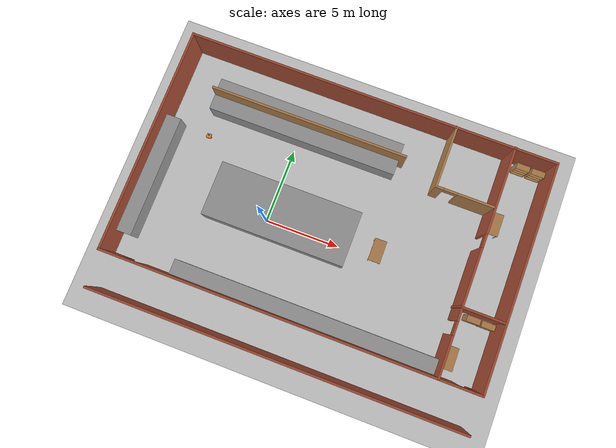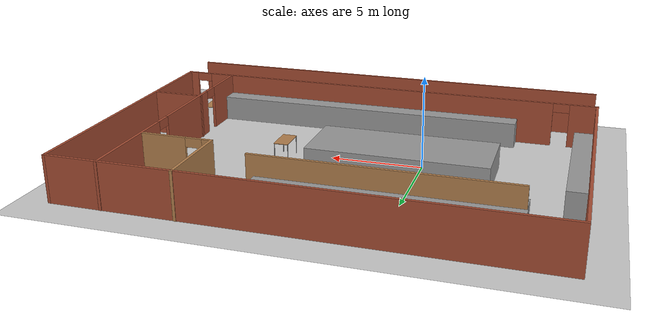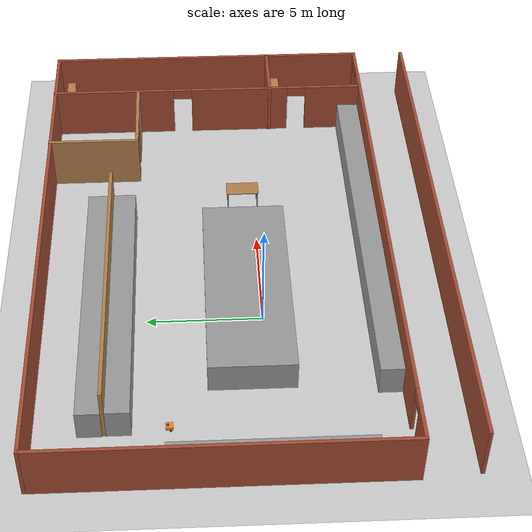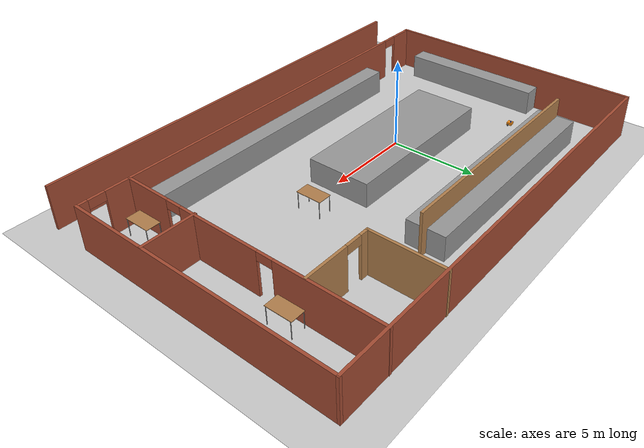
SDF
<sdf version="1.7">
 <world name="default">
  <light name="sun" type="directional">
   <pose>0 0 10 0 -0 0</pose>
   <diffuse>0.8 0.8 0.8 1</diffuse>
   <specular>0.2 0.2 0.2 1</specular>
   <attenuation>
    <range>1000</range>
    <constant>0.9</constant>
    <linear>0.01</linear>
    <quadratic>0.001</quadratic>
   </attenuation>
   <direction>-0.5 0.1 -0.9</direction>
   <spot><inner_angle>0</inner_angle><outer_angle>0</outer_angle><falloff>0</falloff></spot>
  </light>
  <model name="ground_plane">
   <static>1</static>
   <link name="link">
    <collision name="collision">
     <geometry><plane><normal>0 0 1</normal><size>100 100</size></plane></geometry>
     <surface>
      <contact><collide_bitmask>65535</collide_bitmask></contact>
      <friction><ode><mu>100</mu><mu2>50</mu2></ode></friction>
     </surface>
    </collision>
    <visual name="visual">
     <cast_shadows>0</cast_shadows>
     <geometry><plane><normal>0 0 1</normal><size>100 100</size></plane></geometry>
     <material>
      <script><uri>file://media/materials/scripts/gazebo.material</uri><name>Gazebo/Grey</name></script>
     </material>
    </visual>
   </link>
  </model>
  <gravity>0 0 -9.8</gravity>
  <magnetic_field>6e-06 2.3e-05 -4.2e-05</magnetic_field>
  <atmosphere type="adiabatic"/>
  <physics type="ode">
   <max_step_size>0.001</max_step_size>
   <real_time_factor>1</real_time_factor>
   <real_time_update_rate>1000</real_time_update_rate>
  </physics>
  <scene><ambient>0.4 0.4 0.4 1</ambient><background>0.7 0.7 0.7 1</background><shadows>1</shadows></scene>
  <audio><device>default</device></audio>
  <spherical_coordinates>
   <surface_model>EARTH_WGS84</surface_model>
   <latitude_deg>0</latitude_deg>
   <longitude_deg>0</longitude_deg>
   <elevation>0</elevation>
   <heading_deg>0</heading_deg>
  </spherical_coordinates>
  <model name="robotics_lab.world">
   <pose>3.78652 0.79051 0 0 -0 0</pose>
   <link name="Wall_1">
    <collision name="Wall_1_Collision">
     <geometry><box><size>24.75 0.15 2.5</size></box></geometry>
     <pose>0 0 1.25 0 -0 0</pose>
    </collision>
    <visual name="Wall_1_Visual">
     <pose>0 0 1.25 0 -0 0</pose>
     <geometry><box><size>24.75 0.15 2.5</size></box></geometry>
     <material>
      <script><uri>file://media/materials/scripts/gazebo.material</uri><name>Gazebo/Bricks</name></script>
      <ambient>1 1 1 1</ambient>
     </material>
     <meta><layer>0</layer></meta>
    </visual>
    <pose>0.061202 -8.77446 0 0 -0 0</pose>
   </link>
   <link name="Wall_11">
    <collision name="Wall_11_Collision">
     <geometry><box><size>3 0.15 2.5</size></box></geometry>
     <pose>0 0 1.25 0 -0 0</pose>
    </collision>
    <visual name="Wall_11_Visual">
     <pose>0 0 1.25 0 -0 0</pose>
     <geometry><box><size>3 0.15 2.5</size></box></geometry>
     <material>
      <script><uri>file://media/materials/scripts/gazebo.material</uri><name>Gazebo/Bricks</name></script>
      <ambient>1 1 1 1</ambient>
     </material>
     <meta><layer>0</layer></meta>
    </visual>
    <pose>10.9822 -1.85152 0 0 -0 0</pose>
   </link>
   <link name="Wall_13">
    <collision name="Wall_13_Collision">
     <geometry><box><size>4.25 0.15 2.5</size></box></geometry>
     <pose>0 0 1.25 0 -0 0</pose>
    </collision>
    <visual name="Wall_13_Visual">
     <pose>0 0 1.25 0 -0 0</pose>
     <geometry><box><size>4.25 0.15 2.5</size></box></geometry>
     <material>
      <script><uri>file://media/materials/scripts/gazebo.material</uri><name>Gazebo/Wood</name></script>
      <ambient>1 1 1 1</ambient>
     </material>
     <meta><layer>0</layer></meta>
    </visual>
    <pose>5.72266 6.72246 0 0 -0 -1.5708</pose>
   </link>
   <link name="Wall_14">
    <pose>7.64766 4.67246 0 0 -0 0</pose>
    <visual name="Wall_14_Visual_0">
     <pose>-1.71259 0 1.25 0 -0 0</pose>
     <geometry><box><size>0.574826 0.15 2.5</size></box></geometry>
     <material>
      <script><uri>file://media/materials/scripts/gazebo.material</uri><name>Gazebo/Wood</name></script>
      <ambient>1 1 1 1</ambient>
     </material>
     <meta><layer>0</layer></meta>
    </visual>
    <collision name="Wall_14_Collision_0">
     <geometry><box><size>0.574826 0.15 2.5</size></box></geometry>
     <pose>-1.71259 0 1.25 0 -0 0</pose>
    </collision>
    <visual name="Wall_14_Visual_1">
     <pose>0.737413 0 1.25 0 -0 0</pose>
     <geometry><box><size>2.52517 0.15 2.5</size></box></geometry>
     <material>
      <script><uri>file://media/materials/scripts/gazebo.material</uri><name>Gazebo/Wood</name></script>
      <ambient>1 1 1 1</ambient>
     </material>
     <meta><layer>0</layer></meta>
    </visual>
    <collision name="Wall_14_Collision_1">
     <geometry><box><size>2.52517 0.15 2.5</size></box></geometry>
     <pose>0.737413 0 1.25 0 -0 0</pose>
    </collision>
    <visual name="Wall_14_Visual_2">
     <pose>-0.975174 0 2.25 0 -0 0</pose>
     <geometry><box><size>0.9 0.15 0.5</size></box></geometry>
     <material>
      <script><uri>file://media/materials/scripts/gazebo.material</uri><name>Gazebo/Wood</name></script>
      <ambient>1 1 1 1</ambient>
     </material>
     <meta><layer>0</layer></meta>
    </visual>
    <collision name="Wall_14_Collision_2">
     <geometry><box><size>0.9 0.15 0.5</size></box></geometry>
     <pose>-0.975174 0 2.25 0 -0 0</pose>
    </collision>
   </link>
   <link name="Wall_16">
    <collision name="Wall_16_Collision">
     <geometry><box><size>13.25 0.15 2.5</size></box></geometry>
     <pose>0 0 1.25 0 -0 0</pose>
    </collision>
    <visual name="Wall_16_Visual">
     <pose>0 0 1.25 0 -0 0</pose>
     <geometry><box><size>13.25 0.15 2.5</size></box></geometry>
     <material>
      <script><uri>file://media/materials/scripts/gazebo.material</uri><name>Gazebo/Wood</name></script>
      <ambient>1 1 1 1</ambient>
     </material>
     <meta><layer>0</layer></meta>
    </visual>
    <pose>-3.24117 5.81745 0 0 -0 0</pose>
   </link>
   <link name="Wall_4">
    <pose>1e-06 -6.35384 0 0 -0 0</pose>
    <visual name="Wall_4_Visual_0">
     <pose>-11.7224 0 1.25 0 -0 0</pose>
     <geometry><box><size>1.55525 0.15 2.5</size></box></geometry>
     <material>
      <script><uri>file://media/materials/scripts/gazebo.material</uri><name>Gazebo/Bricks</name></script>
      <ambient>1 1 1 1</ambient>
     </material>
     <meta><layer>0</layer></meta>
    </visual>
    <collision name="Wall_4_Collision_0">
     <geometry><box><size>1.55525 0.15 2.5</size></box></geometry>
     <pose>-11.7224 0 1.25 0 -0 0</pose>
    </collision>
    <visual name="Wall_4_Visual_1">
     <pose>0.467707 0 1.25 0 -0 0</pose>
     <geometry><box><size>21.0249 0.15 2.5</size></box></geometry>
     <material>
      <script><uri>file://media/materials/scripts/gazebo.material</uri><name>Gazebo/Bricks</name></script>
      <ambient>1 1 1 1</ambient>
     </material>
     <meta><layer>0</layer></meta>
    </visual>
    <collision name="Wall_4_Collision_1">
     <geometry><box><size>21.0249 0.15 2.5</size></box></geometry>
     <pose>0.467707 0 1.25 0 -0 0</pose>
    </collision>
    <visual name="Wall_4_Visual_2">
     <pose>12.1901 0 1.25 0 -0 0</pose>
     <geometry><box><size>0.61984 0.15 2.5</size></box></geometry>
     <material>
      <script><uri>file://media/materials/scripts/gazebo.material</uri><name>Gazebo/Bricks</name></script>
      <ambient>1 1 1 1</ambient>
     </material>
     <meta><layer>0</layer></meta>
    </visual>
    <collision name="Wall_4_Collision_2">
     <geometry><box><size>0.61984 0.15 2.5</size></box></geometry>
     <pose>12.1901 0 1.25 0 -0 0</pose>
    </collision>
    <visual name="Wall_4_Visual_3">
     <pose>-10.4947 0 2.25 0 -0 0</pose>
     <geometry><box><size>0.9 0.15 0.5</size></box></geometry>
     <material>
      <script><uri>file://media/materials/scripts/gazebo.material</uri><name>Gazebo/Bricks</name></script>
      <ambient>1 1 1 1</ambient>
     </material>
     <meta><layer>0</layer></meta>
    </visual>
    <collision name="Wall_4_Collision_3">
     <geometry><box><size>0.9 0.15 0.5</size></box></geometry>
     <pose>-10.4947 0 2.25 0 -0 0</pose>
    </collision>
    <visual name="Wall_4_Visual_4">
     <pose>11.4302 0 2.25 0 -0 0</pose>
     <geometry><box><size>0.9 0.15 0.5</size></box></geometry>
     <material>
      <script><uri>file://media/materials/scripts/gazebo.material</uri><name>Gazebo/Bricks</name></script>
      <ambient>1 1 1 1</ambient>
     </material>
     <meta><layer>0</layer></meta>
    </visual>
    <collision name="Wall_4_Collision_4">
     <geometry><box><size>0.9 0.15 0.5</size></box></geometry>
     <pose>11.4302 0 2.25 0 -0 0</pose>
    </collision>
   </link>
   <link name="Wall_5">
    <collision name="Wall_5_Collision">
     <geometry><box><size>15.25 0.15 2.5</size></box></geometry>
     <pose>0 0 1.25 0 -0 0</pose>
    </collision>
    <visual name="Wall_5_Visual">
     <pose>0 0 1.25 0 -0 0</pose>
     <geometry><box><size>15.25 0.15 2.5</size></box></geometry>
     <material>
      <script><uri>file://media/materials/scripts/gazebo.material</uri><name>Gazebo/Bricks</name></script>
      <ambient>1 1 1 1</ambient>
     </material>
     <meta><layer>0</layer></meta>
    </visual>
    <pose>12.425 1.19616 0 0 -0 1.5708</pose>
   </link>
   <link name="Wall_6">
    <collision name="Wall_6_Collision">
     <geometry><box><size>25 0.15 2.5</size></box></geometry>
     <pose>0 0 1.25 0 -0 0</pose>
    </collision>
    <visual name="Wall_6_Visual">
     <pose>0 0 1.25 0 -0 0</pose>
     <geometry><box><size>25 0.15 2.5</size></box></geometry>
     <material>
      <script><uri>file://media/materials/scripts/gazebo.material</uri><name>Gazebo/Bricks</name></script>
      <ambient>1 1 1 1</ambient>
     </material>
     <meta><layer>0</layer></meta>
    </visual>
    <pose>1e-06 8.74616 0 0 -0 3.14159</pose>
   </link>
   <link name="Wall_7">
    <collision name="Wall_7_Collision">
     <geometry><box><size>15.25 0.15 2.5</size></box></geometry>
     <pose>0 0 1.25 0 -0 0</pose>
    </collision>
    <visual name="Wall_7_Visual">
     <pose>0 0 1.25 0 -0 0</pose>
     <geometry><box><size>15.25 0.15 2.5</size></box></geometry>
     <material>
      <script><uri>file://media/materials/scripts/gazebo.material</uri><name>Gazebo/Bricks</name></script>
      <ambient>1 1 1 1</ambient>
     </material>
     <meta><layer>0</layer></meta>
    </visual>
    <pose>-12.425 1.19616 0 0 -0 -1.5708</pose>
   </link>
   <link name="Wall_9">
    <pose>9.61573 1.22446 0 0 -0 -1.5708</pose>
    <visual name="Wall_9_Visual_0">
     <pose>-4.663 0 1.25 0 -0 0</pose>
     <geometry><box><size>5.92399 0.15 2.5</size></box></geometry>
     <material>
      <script><uri>file://media/materials/scripts/gazebo.material</uri><name>Gazebo/Bricks</name></script>
      <ambient>1 1 1 1</ambient>
     </material>
     <meta><layer>0</layer></meta>
    </visual>
    <collision name="Wall_9_Collision_0">
     <geometry><box><size>5.92399 0.15 2.5</size></box></geometry>
     <pose>-4.663 0 1.25 0 -0 0</pose>
    </collision>
    <visual name="Wall_9_Visual_1">
     <pose>1.58089 0 1.25 0 -0 0</pose>
     <geometry><box><size>4.76378 0.15 2.5</size></box></geometry>
     <material>
      <script><uri>file://media/materials/scripts/gazebo.material</uri><name>Gazebo/Bricks</name></script>
      <ambient>1 1 1 1</ambient>
     </material>
     <meta><layer>0</layer></meta>
    </visual>
    <collision name="Wall_9_Collision_1">
     <geometry><box><size>4.76378 0.15 2.5</size></box></geometry>
     <pose>1.58089 0 1.25 0 -0 0</pose>
    </collision>
    <visual name="Wall_9_Visual_2">
     <pose>6.24389 0 1.25 0 -0 0</pose>
     <geometry><box><size>2.76222 0.15 2.5</size></box></geometry>
     <material>
      <script><uri>file://media/materials/scripts/gazebo.material</uri><name>Gazebo/Bricks</name></script>
      <ambient>1 1 1 1</ambient>
     </material>
     <meta><layer>0</layer></meta>
    </visual>
    <collision name="Wall_9_Collision_2">
     <geometry><box><size>2.76222 0.15 2.5</size></box></geometry>
     <pose>6.24389 0 1.25 0 -0 0</pose>
    </collision>
    <visual name="Wall_9_Visual_3">
     <pose>-1.25101 0 2.25 0 -0 0</pose>
     <geometry><box><size>0.9 0.15 0.5</size></box></geometry>
     <material>
      <script><uri>file://media/materials/scripts/gazebo.material</uri><name>Gazebo/Bricks</name></script>
      <ambient>1 1 1 1</ambient>
     </material>
     <meta><layer>0</layer></meta>
    </visual>
    <collision name="Wall_9_Collision_3">
     <geometry><box><size>0.9 0.15 0.5</size></box></geometry>
     <pose>-1.25101 0 2.25 0 -0 0</pose>
    </collision>
    <visual name="Wall_9_Visual_4">
     <pose>4.41277 0 2.25 0 -0 0</pose>
     <geometry><box><size>0.9 0.15 0.5</size></box></geometry>
     <material>
      <script><uri>file://media/materials/scripts/gazebo.material</uri><name>Gazebo/Bricks</name></script>
      <ambient>1 1 1 1</ambient>
     </material>
     <meta><layer>0</layer></meta>
    </visual>
    <collision name="Wall_9_Collision_4">
     <geometry><box><size>0.9 0.15 0.5</size></box></geometry>
     <pose>4.41277 0 2.25 0 -0 0</pose>
    </collision>
   </link>
   <static>1</static>
  </model>
  <model name="model_editor">
   <link name="link_0">
    <inertial>
     <mass>18.0708</mass>
     <inertia><ixx>4.46291</ixx><ixy>0</ixy><ixz>0</ixz><iyy>253.408</iyy><iyz>0</iyz><izz>251.957</izz></inertia>
    </inertial>
    <pose>-7.47746 3.85814 0.409871 0 -0 0</pose>
    <visual name="visual">
     <geometry><box><size>12.8963 1 1.40129</size></box></geometry>
     <material>
      <lighting>1</lighting>
      <script><uri>file://media/materials/scripts/gazebo.material</uri><name>Gazebo/Grey</name></script>
      <shader type="pixel"/>
     </material>
    </visual>
    <collision name="collision">
     <geometry><box><size>12.8963 1 1.40129</size></box></geometry>
     <surface>
      <friction>
       <ode><mu>1</mu><mu2>1</mu2><fdir1>0 0 0</fdir1><slip1>0</slip1><slip2>0</slip2></ode>
       <torsional>
        <coefficient>1</coefficient>
        <patch_radius>0</patch_radius>
        <surface_radius>0</surface_radius>
        <use_patch_radius>1</use_patch_radius>
        <ode><slip>0</slip></ode>
       </torsional>
      </friction>
      <bounce><restitution_coefficient>0</restitution_coefficient><threshold>1e+06</threshold></bounce>
      <contact>
       <collide_without_contact>0</collide_without_contact>
       <collide_without_contact_bitmask>1</collide_without_contact_bitmask>
       <collide_bitmask>1</collide_bitmask>
       <ode>
        <soft_cfm>0</soft_cfm>
        <soft_erp>0.2</soft_erp>
        <kp>1e+13</kp>
        <kd>1</kd>
        <max_vel>0.01</max_vel>
        <min_depth>0</min_depth>
       </ode>
       <bullet>
        <split_impulse>1</split_impulse>
        <split_impulse_penetration_threshold>-0.01</split_impulse_penetration_threshold>
        <soft_cfm>0</soft_cfm>
        <soft_erp>0.2</soft_erp>
        <kp>1e+13</kp>
        <kd>1</kd>
       </bullet>
      </contact>
     </surface>
    </collision>
   </link>
   <link name="link_0_clone">
    <inertial>
     <mass>18.0708</mass>
     <inertia><ixx>4.46291</ixx><ixy>0</ixy><ixz>0</ixz><iyy>253.408</iyy><iyz>0</iyz><izz>251.957</izz></inertia>
    </inertial>
    <pose>-7.49983 5.0254 0.40987 0 -0 0</pose>
    <visual name="visual">
     <geometry><box><size>12.8963 1 1.40129</size></box></geometry>
     <material>
      <lighting>1</lighting>
      <script><uri>file://media/materials/scripts/gazebo.material</uri><name>Gazebo/Grey</name></script>
      <shader type="pixel"/>
     </material>
    </visual>
    <collision name="collision">
     <geometry><box><size>12.8963 1 1.40129</size></box></geometry>
     <surface>
      <friction>
       <ode><mu>1</mu><mu2>1</mu2><fdir1>0 0 0</fdir1><slip1>0</slip1><slip2>0</slip2></ode>
       <torsional>
        <coefficient>1</coefficient>
        <patch_radius>0</patch_radius>
        <surface_radius>0</surface_radius>
        <use_patch_radius>1</use_patch_radius>
        <ode><slip>0</slip></ode>
       </torsional>
      </friction>
      <bounce><restitution_coefficient>0</restitution_coefficient><threshold>1e+06</threshold></bounce>
      <contact>
       <collide_without_contact>0</collide_without_contact>
       <collide_without_contact_bitmask>1</collide_without_contact_bitmask>
       <collide_bitmask>1</collide_bitmask>
       <ode>
        <soft_cfm>0</soft_cfm>
        <soft_erp>0.2</soft_erp>
        <kp>1e+13</kp>
        <kd>1</kd>
        <max_vel>0.01</max_vel>
        <min_depth>0</min_depth>
       </ode>
       <bullet>
        <split_impulse>1</split_impulse>
        <split_impulse_penetration_threshold>-0.01</split_impulse_penetration_threshold>
        <soft_cfm>0</soft_cfm>
        <soft_erp>0.2</soft_erp>
        <kp>1e+13</kp>
        <kd>1</kd>
       </bullet>
      </contact>
     </surface>
    </collision>
   </link>
   <link name="link_0_clone_0">
    <inertial>
     <mass>24.7173</mass>
     <inertia><ixx>6.10438</ixx><ixy>0</ixy><ixz>0</ixz><iyy>644.956</iyy><iyz>0</iyz><izz>642.971</izz></inertia>
    </inertial>
    <pose>-3.33593 -7.13954 0.40987 0 -0 0</pose>
    <visual name="visual">
     <geometry><box><size>17.6396 1 1.40129</size></box></geometry>
     <material>
      <lighting>1</lighting>
      <script><uri>file://media/materials/scripts/gazebo.material</uri><name>Gazebo/Grey</name></script>
      <shader type="pixel"/>
     </material>
    </visual>
    <collision name="collision">
     <geometry><box><size>17.6396 1 1.40129</size></box></geometry>
     <surface>
      <friction>
       <ode><mu>1</mu><mu2>1</mu2><fdir1>0 0 0</fdir1><slip1>0</slip1><slip2>0</slip2></ode>
       <torsional>
        <coefficient>1</coefficient>
        <patch_radius>0</patch_radius>
        <surface_radius>0</surface_radius>
        <use_patch_radius>1</use_patch_radius>
        <ode><slip>0</slip></ode>
       </torsional>
      </friction>
      <bounce><restitution_coefficient>0</restitution_coefficient><threshold>1e+06</threshold></bounce>
      <contact>
       <collide_without_contact>0</collide_without_contact>
       <collide_without_contact_bitmask>1</collide_without_contact_bitmask>
       <collide_bitmask>1</collide_bitmask>
       <ode>
        <soft_cfm>0</soft_cfm>
        <soft_erp>0.2</soft_erp>
        <kp>1e+13</kp>
        <kd>1</kd>
        <max_vel>0.01</max_vel>
        <min_depth>0</min_depth>
       </ode>
       <bullet>
        <split_impulse>1</split_impulse>
        <split_impulse_penetration_threshold>-0.01</split_impulse_penetration_threshold>
        <soft_cfm>0</soft_cfm>
        <soft_erp>0.2</soft_erp>
        <kp>1e+13</kp>
        <kd>1</kd>
       </bullet>
      </contact>
     </surface>
    </collision>
   </link>
   <link name="link_0_clone_1">
    <inertial>
     <mass>50.1155</mass>
     <inertia><ixx>65.1768</ixx><ixy>0</ixy><ixz>0</ixz><iyy>399.775</iyy><iyz>0</iyz><izz>448.55</izz></inertia>
    </inertial>
    <pose>-6.90095 -1.54559 0.40987 0 -0 0</pose>
    <visual name="visual">
     <geometry><box><size>9.68304 3.69361 1.40129</size></box></geometry>
     <material>
      <lighting>1</lighting>
      <script><uri>file://media/materials/scripts/gazebo.material</uri><name>Gazebo/Grey</name></script>
      <shader type="pixel"/>
     </material>
    </visual>
    <collision name="collision">
     <geometry><box><size>9.68304 3.69361 1.40129</size></box></geometry>
     <surface>
      <friction>
       <ode><mu>1</mu><mu2>1</mu2><fdir1>0 0 0</fdir1><slip1>0</slip1><slip2>0</slip2></ode>
       <torsional>
        <coefficient>1</coefficient>
        <patch_radius>0</patch_radius>
        <surface_radius>0</surface_radius>
        <use_patch_radius>1</use_patch_radius>
        <ode><slip>0</slip></ode>
       </torsional>
      </friction>
      <bounce><restitution_coefficient>0</restitution_coefficient><threshold>1e+06</threshold></bounce>
      <contact>
       <collide_without_contact>0</collide_without_contact>
       <collide_without_contact_bitmask>1</collide_without_contact_bitmask>
       <collide_bitmask>1</collide_bitmask>
       <ode>
        <soft_cfm>0</soft_cfm>
        <soft_erp>0.2</soft_erp>
        <kp>1e+13</kp>
        <kd>1</kd>
        <max_vel>0.01</max_vel>
        <min_depth>0</min_depth>
       </ode>
       <bullet>
        <split_impulse>1</split_impulse>
        <split_impulse_penetration_threshold>-0.01</split_impulse_penetration_threshold>
        <soft_cfm>0</soft_cfm>
        <soft_erp>0.2</soft_erp>
        <kp>1e+13</kp>
        <kd>1</kd>
       </bullet>
      </contact>
     </surface>
    </collision>
   </link>
   <link name="link_0_clone_2">
    <inertial>
     <mass>11.5629</mass>
     <inertia><ixx>2.85567</ixx><ixy>0</ixy><ixz>0</ixz><iyy>67.506</iyy><iyz>0</iyz><izz>66.5775</izz></inertia>
    </inertial>
    <pose>-15.8863 -2.1349 0.40987 0 0 -1.57051</pose>
    <visual name="visual">
     <geometry><box><size>8.25192 1 1.40129</size></box></geometry>
     <material>
      <lighting>1</lighting>
      <script><uri>file://media/materials/scripts/gazebo.material</uri><name>Gazebo/Grey</name></script>
      <shader type="pixel"/>
     </material>
    </visual>
    <collision name="collision">
     <geometry><box><size>8.25192 1 1.40129</size></box></geometry>
     <surface>
      <friction>
       <ode><mu>1</mu><mu2>1</mu2><fdir1>0 0 0</fdir1><slip1>0</slip1><slip2>0</slip2></ode>
       <torsional>
        <coefficient>1</coefficient>
        <patch_radius>0</patch_radius>
        <surface_radius>0</surface_radius>
        <use_patch_radius>1</use_patch_radius>
        <ode><slip>0</slip></ode>
       </torsional>
      </friction>
      <bounce><restitution_coefficient>0</restitution_coefficient><threshold>1e+06</threshold></bounce>
      <contact>
       <collide_without_contact>0</collide_without_contact>
       <collide_without_contact_bitmask>1</collide_without_contact_bitmask>
       <collide_bitmask>1</collide_bitmask>
       <ode>
        <soft_cfm>0</soft_cfm>
        <soft_erp>0.2</soft_erp>
        <kp>1e+13</kp>
        <kd>1</kd>
        <max_vel>0.01</max_vel>
        <min_depth>0</min_depth>
       </ode>
       <bullet>
        <split_impulse>1</split_impulse>
        <split_impulse_penetration_threshold>-0.01</split_impulse_penetration_threshold>
        <soft_cfm>0</soft_cfm>
        <soft_erp>0.2</soft_erp>
        <kp>1e+13</kp>
        <kd>1</kd>
       </bullet>
      </contact>
     </surface>
    </collision>
   </link>
   <model name="bookshelf">
    <static>1</static>
    <link name="link">
     <inertial><mass>1</mass></inertial>
     <collision name="back">
      <pose>0 0.005 0.6 0 -0 0</pose>
      <geometry><box><size>0.9 0.01 1.2</size></box></geometry>
     </collision>
     <visual name="visual1">
      <pose>0 0.005 0.6 0 -0 0</pose>
      <geometry><box><size>0.9 0.01 1.2</size></box></geometry>
      <material>
       <script><uri>file://media/materials/scripts/gazebo.material</uri><name>Gazebo/Wood</name></script>
      </material>
     </visual>
     <collision name="left_side">
      <pose>0.45 -0.195 0.6 0 -0 0</pose>
      <geometry><box><size>0.02 0.4 1.2</size></box></geometry>
     </collision>
     <visual name="visual2">
      <pose>0.45 -0.195 0.6 0 -0 0</pose>
      <geometry><box><size>0.02 0.4 1.2</size></box></geometry>
      <material>
       <script><uri>file://media/materials/scripts/gazebo.material</uri><name>Gazebo/Wood</name></script>
      </material>
     </visual>
     <collision name="right_side">
      <pose>-0.45 -0.195 0.6 0 -0 0</pose>
      <geometry><box><size>0.02 0.4 1.2</size></box></geometry>
     </collision>
     <visual name="visual3">
      <pose>-0.45 -0.195 0.6 0 -0 0</pose>
      <geometry><box><size>0.02 0.4 1.2</size></box></geometry>
      <material>
       <script><uri>file://media/materials/scripts/gazebo.material</uri><name>Gazebo/Wood</name></script>
      </material>
     </visual>
     <collision name="bottom">
      <pose>0 -0.195 0.03 0 -0 0</pose>
      <geometry><box><size>0.88 0.4 0.06</size></box></geometry>
     </collision>
     <visual name="visual4">
      <pose>0 -0.195 0.03 0 -0 0</pose>
      <geometry><box><size>0.88 0.4 0.06</size></box></geometry>
      <material>
       <script><uri>file://media/materials/scripts/gazebo.material</uri><name>Gazebo/Wood</name></script>
      </material>
     </visual>
     <collision name="top">
      <pose>0 -0.195 1.19 0 -0 0</pose>
      <geometry><box><size>0.88 0.4 0.02</size></box></geometry>
     </collision>
     <visual name="visual5">
      <pose>0 -0.195 1.19 0 -0 0</pose>
      <geometry><box><size>0.88 0.4 0.02</size></box></geometry>
      <material>
       <script><uri>file://media/materials/scripts/gazebo.material</uri><name>Gazebo/Wood</name></script>
      </material>
     </visual>
     <collision name="low_shelf">
      <pose>0 -0.195 0.43 0 -0 0</pose>
      <geometry><box><size>0.88 0.4 0.02</size></box></geometry>
     </collision>
     <visual name="visual6">
      <pose>0 -0.195 0.43 0 -0 0</pose>
      <geometry><box><size>0.88 0.4 0.02</size></box></geometry>
      <material>
       <script><uri>file://media/materials/scripts/gazebo.material</uri><name>Gazebo/Wood</name></script>
      </material>
     </visual>
     <collision name="high_shelf">
      <pose>0 -0.195 0.8 0 -0 0</pose>
      <geometry><box><size>0.88 0.4 0.02</size></box></geometry>
     </collision>
     <visual name="visual7">
      <pose>0 -0.195 0.8 0 -0 0</pose>
      <geometry><box><size>0.88 0.4 0.02</size></box></geometry>
      <material>
       <script><uri>file://media/materials/scripts/gazebo.material</uri><name>Gazebo/Wood</name></script>
      </material>
     </visual>
    </link>
    <pose>6.78918 -3.41722 -0.292765 0 -0 0</pose>
   </model>
   <model name="bookshelf_clone">
    <static>1</static>
    <link name="link">
     <inertial><mass>1</mass></inertial>
     <collision name="back">
      <pose>0 0.005 0.6 0 -0 0</pose>
      <geometry><box><size>0.9 0.01 1.2</size></box></geometry>
     </collision>
     <visual name="visual1">
      <pose>0 0.005 0.6 0 -0 0</pose>
      <geometry><box><size>0.9 0.01 1.2</size></box></geometry>
      <material>
       <script><uri>file://media/materials/scripts/gazebo.material</uri><name>Gazebo/Wood</name></script>
      </material>
     </visual>
     <collision name="left_side">
      <pose>0.45 -0.195 0.6 0 -0 0</pose>
      <geometry><box><size>0.02 0.4 1.2</size></box></geometry>
     </collision>
     <visual name="visual2">
      <pose>0.45 -0.195 0.6 0 -0 0</pose>
      <geometry><box><size>0.02 0.4 1.2</size></box></geometry>
      <material>
       <script><uri>file://media/materials/scripts/gazebo.material</uri><name>Gazebo/Wood</name></script>
      </material>
     </visual>
     <collision name="right_side">
      <pose>-0.45 -0.195 0.6 0 -0 0</pose>
      <geometry><box><size>0.02 0.4 1.2</size></box></geometry>
     </collision>
     <visual name="visual3">
      <pose>-0.45 -0.195 0.6 0 -0 0</pose>
      <geometry><box><size>0.02 0.4 1.2</size></box></geometry>
      <material>
       <script><uri>file://media/materials/scripts/gazebo.material</uri><name>Gazebo/Wood</name></script>
      </material>
     </visual>
     <collision name="bottom">
      <pose>0 -0.195 0.03 0 -0 0</pose>
      <geometry><box><size>0.88 0.4 0.06</size></box></geometry>
     </collision>
     <visual name="visual4">
      <pose>0 -0.195 0.03 0 -0 0</pose>
      <geometry><box><size>0.88 0.4 0.06</size></box></geometry>
      <material>
       <script><uri>file://media/materials/scripts/gazebo.material</uri><name>Gazebo/Wood</name></script>
      </material>
     </visual>
     <collision name="top">
      <pose>0 -0.195 1.19 0 -0 0</pose>
      <geometry><box><size>0.88 0.4 0.02</size></box></geometry>
     </collision>
     <visual name="visual5">
      <pose>0 -0.195 1.19 0 -0 0</pose>
      <geometry><box><size>0.88 0.4 0.02</size></box></geometry>
      <material>
       <script><uri>file://media/materials/scripts/gazebo.material</uri><name>Gazebo/Wood</name></script>
      </material>
     </visual>
     <collision name="low_shelf">
      <pose>0 -0.195 0.43 0 -0 0</pose>
      <geometry><box><size>0.88 0.4 0.02</size></box></geometry>
     </collision>
     <visual name="visual6">
      <pose>0 -0.195 0.43 0 -0 0</pose>
      <geometry><box><size>0.88 0.4 0.02</size></box></geometry>
      <material>
       <script><uri>file://media/materials/scripts/gazebo.material</uri><name>Gazebo/Wood</name></script>
      </material>
     </visual>
     <collision name="high_shelf">
      <pose>0 -0.195 0.8 0 -0 0</pose>
      <geometry><box><size>0.88 0.4 0.02</size></box></geometry>
     </collision>
     <visual name="visual7">
      <pose>0 -0.195 0.8 0 -0 0</pose>
      <geometry><box><size>0.88 0.4 0.02</size></box></geometry>
      <material>
       <script><uri>file://media/materials/scripts/gazebo.material</uri><name>Gazebo/Wood</name></script>
      </material>
     </visual>
    </link>
    <pose>6.74104 7.03907 -0.292765 0 -0 0</pose>
   </model>
   <model name="bookshelf_clone_0">
    <static>1</static>
    <link name="link">
     <inertial><mass>1</mass></inertial>
     <collision name="back">
      <pose>0 0.005 0.6 0 -0 0</pose>
      <geometry><box><size>0.9 0.01 1.2</size></box></geometry>
     </collision>
     <visual name="visual1">
      <pose>0 0.005 0.6 0 -0 0</pose>
      <geometry><box><size>0.9 0.01 1.2</size></box></geometry>
      <material>
       <script><uri>file://media/materials/scripts/gazebo.material</uri><name>Gazebo/Wood</name></script>
      </material>
     </visual>
     <collision name="left_side">
      <pose>0.45 -0.195 0.6 0 -0 0</pose>
      <geometry><box><size>0.02 0.4 1.2</size></box></geometry>
     </collision>
     <visual name="visual2">
      <pose>0.45 -0.195 0.6 0 -0 0</pose>
      <geometry><box><size>0.02 0.4 1.2</size></box></geometry>
      <material>
       <script><uri>file://media/materials/scripts/gazebo.material</uri><name>Gazebo/Wood</name></script>
      </material>
     </visual>
     <collision name="right_side">
      <pose>-0.45 -0.195 0.6 0 -0 0</pose>
      <geometry><box><size>0.02 0.4 1.2</size></box></geometry>
     </collision>
     <visual name="visual3">
      <pose>-0.45 -0.195 0.6 0 -0 0</pose>
      <geometry><box><size>0.02 0.4 1.2</size></box></geometry>
      <material>
       <script><uri>file://media/materials/scripts/gazebo.material</uri><name>Gazebo/Wood</name></script>
      </material>
     </visual>
     <collision name="bottom">
      <pose>0 -0.195 0.03 0 -0 0</pose>
      <geometry><box><size>0.88 0.4 0.06</size></box></geometry>
     </collision>
     <visual name="visual4">
      <pose>0 -0.195 0.03 0 -0 0</pose>
      <geometry><box><size>0.88 0.4 0.06</size></box></geometry>
      <material>
       <script><uri>file://media/materials/scripts/gazebo.material</uri><name>Gazebo/Wood</name></script>
      </material>
     </visual>
     <collision name="top">
      <pose>0 -0.195 1.19 0 -0 0</pose>
      <geometry><box><size>0.88 0.4 0.02</size></box></geometry>
     </collision>
     <visual name="visual5">
      <pose>0 -0.195 1.19 0 -0 0</pose>
      <geometry><box><size>0.88 0.4 0.02</size></box></geometry>
      <material>
       <script><uri>file://media/materials/scripts/gazebo.material</uri><name>Gazebo/Wood</name></script>
      </material>
     </visual>
     <collision name="low_shelf">
      <pose>0 -0.195 0.43 0 -0 0</pose>
      <geometry><box><size>0.88 0.4 0.02</size></box></geometry>
     </collision>
     <visual name="visual6">
      <pose>0 -0.195 0.43 0 -0 0</pose>
      <geometry><box><size>0.88 0.4 0.02</size></box></geometry>
      <material>
       <script><uri>file://media/materials/scripts/gazebo.material</uri><name>Gazebo/Wood</name></script>
      </material>
     </visual>
     <collision name="high_shelf">
      <pose>0 -0.195 0.8 0 -0 0</pose>
      <geometry><box><size>0.88 0.4 0.02</size></box></geometry>
     </collision>
     <visual name="visual7">
      <pose>0 -0.195 0.8 0 -0 0</pose>
      <geometry><box><size>0.88 0.4 0.02</size></box></geometry>
      <material>
       <script><uri>file://media/materials/scripts/gazebo.material</uri><name>Gazebo/Wood</name></script>
      </material>
     </visual>
    </link>
    <pose>7.75648 -3.43464 -0.292765 0 -0 0</pose>
   </model>
   <model name="bookshelf_clone_1">
    <static>1</static>
    <link name="link">
     <inertial><mass>1</mass></inertial>
     <collision name="back">
      <pose>0 0.005 0.6 0 -0 0</pose>
      <geometry><box><size>0.9 0.01 1.2</size></box></geometry>
     </collision>
     <visual name="visual1">
      <pose>0 0.005 0.6 0 -0 0</pose>
      <geometry><box><size>0.9 0.01 1.2</size></box></geometry>
      <material>
       <script><uri>file://media/materials/scripts/gazebo.material</uri><name>Gazebo/Wood</name></script>
      </material>
     </visual>
     <collision name="left_side">
      <pose>0.45 -0.195 0.6 0 -0 0</pose>
      <geometry><box><size>0.02 0.4 1.2</size></box></geometry>
     </collision>
     <visual name="visual2">
      <pose>0.45 -0.195 0.6 0 -0 0</pose>
      <geometry><box><size>0.02 0.4 1.2</size></box></geometry>
      <material>
       <script><uri>file://media/materials/scripts/gazebo.material</uri><name>Gazebo/Wood</name></script>
      </material>
     </visual>
     <collision name="right_side">
      <pose>-0.45 -0.195 0.6 0 -0 0</pose>
      <geometry><box><size>0.02 0.4 1.2</size></box></geometry>
     </collision>
     <visual name="visual3">
      <pose>-0.45 -0.195 0.6 0 -0 0</pose>
      <geometry><box><size>0.02 0.4 1.2</size></box></geometry>
      <material>
       <script><uri>file://media/materials/scripts/gazebo.material</uri><name>Gazebo/Wood</name></script>
      </material>
     </visual>
     <collision name="bottom">
      <pose>0 -0.195 0.03 0 -0 0</pose>
      <geometry><box><size>0.88 0.4 0.06</size></box></geometry>
     </collision>
     <visual name="visual4">
      <pose>0 -0.195 0.03 0 -0 0</pose>
      <geometry><box><size>0.88 0.4 0.06</size></box></geometry>
      <material>
       <script><uri>file://media/materials/scripts/gazebo.material</uri><name>Gazebo/Wood</name></script>
      </material>
     </visual>
     <collision name="top">
      <pose>0 -0.195 1.19 0 -0 0</pose>
      <geometry><box><size>0.88 0.4 0.02</size></box></geometry>
     </collision>
     <visual name="visual5">
      <pose>0 -0.195 1.19 0 -0 0</pose>
      <geometry><box><size>0.88 0.4 0.02</size></box></geometry>
      <material>
       <script><uri>file://media/materials/scripts/gazebo.material</uri><name>Gazebo/Wood</name></script>
      </material>
     </visual>
     <collision name="low_shelf">
      <pose>0 -0.195 0.43 0 -0 0</pose>
      <geometry><box><size>0.88 0.4 0.02</size></box></geometry>
     </collision>
     <visual name="visual6">
      <pose>0 -0.195 0.43 0 -0 0</pose>
      <geometry><box><size>0.88 0.4 0.02</size></box></geometry>
      <material>
       <script><uri>file://media/materials/scripts/gazebo.material</uri><name>Gazebo/Wood</name></script>
      </material>
     </visual>
     <collision name="high_shelf">
      <pose>0 -0.195 0.8 0 -0 0</pose>
      <geometry><box><size>0.88 0.4 0.02</size></box></geometry>
     </collision>
     <visual name="visual7">
      <pose>0 -0.195 0.8 0 -0 0</pose>
      <geometry><box><size>0.88 0.4 0.02</size></box></geometry>
      <material>
       <script><uri>file://media/materials/scripts/gazebo.material</uri><name>Gazebo/Wood</name></script>
      </material>
     </visual>
    </link>
    <pose>7.7779 7.01971 -0.292765 0 -0 0</pose>
   </model>
   <model name="table">
    <static>1</static>
    <link name="link">
     <collision name="surface">
      <pose>0 0 1 0 -0 0</pose>
      <geometry><box><size>1.5 0.8 0.03</size></box></geometry>
      <surface><friction><ode><mu>0.6</mu><mu2>0.6</mu2></ode></friction></surface>
     </collision>
     <visual name="visual1">
      <pose>0 0 1 0 -0 0</pose>
      <geometry><box><size>1.5 0.8 0.03</size></box></geometry>
      <material>
       <script><uri>file://media/materials/scripts/gazebo.material</uri><name>Gazebo/Wood</name></script>
      </material>
     </visual>
     <collision name="front_left_leg">
      <pose>0.68 0.38 0.5 0 -0 0</pose>
      <geometry><cylinder><radius>0.02</radius><length>1</length></cylinder></geometry>
     </collision>
     <visual name="front_left_leg">
      <pose>0.68 0.38 0.5 0 -0 0</pose>
      <geometry><cylinder><radius>0.02</radius><length>1</length></cylinder></geometry>
      <material>
       <script><uri>file://media/materials/scripts/gazebo.material</uri><name>Gazebo/Grey</name></script>
      </material>
     </visual>
     <collision name="front_right_leg">
      <pose>0.68 -0.38 0.5 0 -0 0</pose>
      <geometry><cylinder><radius>0.02</radius><length>1</length></cylinder></geometry>
     </collision>
     <visual name="front_right_leg">
      <pose>0.68 -0.38 0.5 0 -0 0</pose>
      <geometry><cylinder><radius>0.02</radius><length>1</length></cylinder></geometry>
      <material>
       <script><uri>file://media/materials/scripts/gazebo.material</uri><name>Gazebo/Grey</name></script>
      </material>
     </visual>
     <collision name="back_right_leg">
      <pose>-0.68 -0.38 0.5 0 -0 0</pose>
      <geometry><cylinder><radius>0.02</radius><length>1</length></cylinder></geometry>
     </collision>
     <visual name="back_right_leg">
      <pose>-0.68 -0.38 0.5 0 -0 0</pose>
      <geometry><cylinder><radius>0.02</radius><length>1</length></cylinder></geometry>
      <material>
       <script><uri>file://media/materials/scripts/gazebo.material</uri><name>Gazebo/Grey</name></script>
      </material>
     </visual>
     <collision name="back_left_leg">
      <pose>-0.68 0.38 0.5 0 -0 0</pose>
      <geometry><cylinder><radius>0.02</radius><length>1</length></cylinder></geometry>
     </collision>
     <visual name="back_left_leg">
      <pose>-0.68 0.38 0.5 0 -0 0</pose>
      <geometry><cylinder><radius>0.02</radius><length>1</length></cylinder></geometry>
      <material>
       <script><uri>file://media/materials/scripts/gazebo.material</uri><name>Gazebo/Grey</name></script>
      </material>
     </visual>
    </link>
    <pose>-0.313936 -1.6083 -0.292765 0 0 -1.56029</pose>
   </model>
   <model name="table_clone">
    <static>1</static>
    <link name="link">
     <collision name="surface">
      <pose>0 0 1 0 -0 0</pose>
      <geometry><box><size>1.5 0.8 0.03</size></box></geometry>
      <surface><friction><ode><mu>0.6</mu><mu2>0.6</mu2></ode></friction></surface>
     </collision>
     <visual name="visual1">
      <pose>0 0 1 0 -0 0</pose>
      <geometry><box><size>1.5 0.8 0.03</size></box></geometry>
      <material>
       <script><uri>file://media/materials/scripts/gazebo.material</uri><name>Gazebo/Wood</name></script>
      </material>
     </visual>
     <collision name="front_left_leg">
      <pose>0.68 0.38 0.5 0 -0 0</pose>
      <geometry><cylinder><radius>0.02</radius><length>1</length></cylinder></geometry>
     </collision>
     <visual name="front_left_leg">
      <pose>0.68 0.38 0.5 0 -0 0</pose>
      <geometry><cylinder><radius>0.02</radius><length>1</length></cylinder></geometry>
      <material>
       <script><uri>file://media/materials/scripts/gazebo.material</uri><name>Gazebo/Grey</name></script>
      </material>
     </visual>
     <collision name="front_right_leg">
      <pose>0.68 -0.38 0.5 0 -0 0</pose>
      <geometry><cylinder><radius>0.02</radius><length>1</length></cylinder></geometry>
     </collision>
     <visual name="front_right_leg">
      <pose>0.68 -0.38 0.5 0 -0 0</pose>
      <geometry><cylinder><radius>0.02</radius><length>1</length></cylinder></geometry>
      <material>
       <script><uri>file://media/materials/scripts/gazebo.material</uri><name>Gazebo/Grey</name></script>
      </material>
     </visual>
     <collision name="back_right_leg">
      <pose>-0.68 -0.38 0.5 0 -0 0</pose>
      <geometry><cylinder><radius>0.02</radius><length>1</length></cylinder></geometry>
     </collision>
     <visual name="back_right_leg">
      <pose>-0.68 -0.38 0.5 0 -0 0</pose>
      <geometry><cylinder><radius>0.02</radius><length>1</length></cylinder></geometry>
      <material>
       <script><uri>file://media/materials/scripts/gazebo.material</uri><name>Gazebo/Grey</name></script>
      </material>
     </visual>
     <collision name="back_left_leg">
      <pose>-0.68 0.38 0.5 0 -0 0</pose>
      <geometry><cylinder><radius>0.02</radius><length>1</length></cylinder></geometry>
     </collision>
     <visual name="back_left_leg">
      <pose>-0.68 0.38 0.5 0 -0 0</pose>
      <geometry><cylinder><radius>0.02</radius><length>1</length></cylinder></geometry>
      <material>
       <script><uri>file://media/materials/scripts/gazebo.material</uri><name>Gazebo/Grey</name></script>
      </material>
     </visual>
    </link>
    <pose>6.15213 -6.34003 -0.292765 0 0 -1.56029</pose>
   </model>
   <model name="table_clone_0">
    <static>1</static>
    <link name="link">
     <collision name="surface">
      <pose>0 0 1 0 -0 0</pose>
      <geometry><box><size>1.5 0.8 0.03</size></box></geometry>
      <surface><friction><ode><mu>0.6</mu><mu2>0.6</mu2></ode></friction></surface>
     </collision>
     <visual name="visual1">
      <pose>0 0 1 0 -0 0</pose>
      <geometry><box><size>1.5 0.8 0.03</size></box></geometry>
      <material>
       <script><uri>file://media/materials/scripts/gazebo.material</uri><name>Gazebo/Wood</name></script>
      </material>
     </visual>
     <collision name="front_left_leg">
      <pose>0.68 0.38 0.5 0 -0 0</pose>
      <geometry><cylinder><radius>0.02</radius><length>1</length></cylinder></geometry>
     </collision>
     <visual name="front_left_leg">
      <pose>0.68 0.38 0.5 0 -0 0</pose>
      <geometry><cylinder><radius>0.02</radius><length>1</length></cylinder></geometry>
      <material>
       <script><uri>file://media/materials/scripts/gazebo.material</uri><name>Gazebo/Grey</name></script>
      </material>
     </visual>
     <collision name="front_right_leg">
      <pose>0.68 -0.38 0.5 0 -0 0</pose>
      <geometry><cylinder><radius>0.02</radius><length>1</length></cylinder></geometry>
     </collision>
     <visual name="front_right_leg">
      <pose>0.68 -0.38 0.5 0 -0 0</pose>
      <geometry><cylinder><radius>0.02</radius><length>1</length></cylinder></geometry>
      <material>
       <script><uri>file://media/materials/scripts/gazebo.material</uri><name>Gazebo/Grey</name></script>
      </material>
     </visual>
     <collision name="back_right_leg">
      <pose>-0.68 -0.38 0.5 0 -0 0</pose>
      <geometry><cylinder><radius>0.02</radius><length>1</length></cylinder></geometry>
     </collision>
     <visual name="back_right_leg">
      <pose>-0.68 -0.38 0.5 0 -0 0</pose>
      <geometry><cylinder><radius>0.02</radius><length>1</length></cylinder></geometry>
      <material>
       <script><uri>file://media/materials/scripts/gazebo.material</uri><name>Gazebo/Grey</name></script>
      </material>
     </visual>
     <collision name="back_left_leg">
      <pose>-0.68 0.38 0.5 0 -0 0</pose>
      <geometry><cylinder><radius>0.02</radius><length>1</length></cylinder></geometry>
     </collision>
     <visual name="back_left_leg">
      <pose>-0.68 0.38 0.5 0 -0 0</pose>
      <geometry><cylinder><radius>0.02</radius><length>1</length></cylinder></geometry>
      <material>
       <script><uri>file://media/materials/scripts/gazebo.material</uri><name>Gazebo/Grey</name></script>
      </material>
     </visual>
    </link>
    <pose>6.19759 2.67789 -0.292765 0 0 -1.56029</pose>
   </model>
   <static>0</static>
   <pose>7.82898 2.16369 0.290774 0 -0 0</pose>
  </model>
  <model name="navigation_test">
   <link name="base_link">
    <inertial>
     <pose>0.079 0 0.1075 0 -0 0</pose>
     <mass>1</mass>
     <inertia>
      <ixx>0.00859708</ixx>
      <ixy>0</ixy>
      <ixz>-0.0003825</ixz>
      <iyy>0.00956608</iyy>
      <iyz>0</iyz>
      <izz>0.009069</izz>
     </inertia>
    </inertial>
    <collision name="base_link_fixed_joint_lump__chassis_collision">
     <pose>0.05 0 0.075 0 -0 0</pose>
     <geometry><box><size>0.3 0.3 0.15</size></box></geometry>
    </collision>
    <collision name="base_link_fixed_joint_lump__caster_wheel_collision_1">
     <pose>0.14 0 0 0 -0 0</pose>
     <geometry><sphere><radius>0.05</radius></sphere></geometry>
     <surface><friction><ode><mu>0.001</mu><mu2>0.001</mu2></ode></friction></surface>
    </collision>
    <collision name="base_link_fixed_joint_lump__laser_frame_collision_2">
     <pose>0.1 0 0.175 0 -0 0</pose>
     <geometry><cylinder><length>0.04</length><radius>0.05</radius></cylinder></geometry>
    </collision>
    <visual name="base_link_fixed_joint_lump__chassis_visual">
     <pose>0.05 0 0.075 0 -0 0</pose>
     <geometry><box><size>0.3 0.3 0.15</size></box></geometry>
     <material>
      <script><name>Gazebo/Orange</name><uri>file://media/materials/scripts/gazebo.material</uri></script>
     </material>
    </visual>
    <visual name="base_link_fixed_joint_lump__caster_wheel_visual_1">
     <pose>0.14 0 0 0 -0 0</pose>
     <geometry><sphere><radius>0.05</radius></sphere></geometry>
     <material>
      <script><name>Gazebo/White</name><uri>file://media/materials/scripts/gazebo.material</uri></script>
     </material>
    </visual>
    <visual name="base_link_fixed_joint_lump__laser_frame_visual_2">
     <pose>0.1 0 0.175 0 -0 0</pose>
     <geometry><cylinder><length>0.04</length><radius>0.05</radius></cylinder></geometry>
     <material>
      <script><name>Gazebo/Blue</name><uri>file://media/materials/scripts/gazebo.material</uri></script>
     </material>
    </visual>
    <sensor name="laser" type="ray">
     <visualize>1</visualize>
     <update_rate>10</update_rate>
     <ray>
      <scan>
       <horizontal>
        <samples>360</samples>
        <min_angle>-3.14</min_angle>
        <max_angle>3.14</max_angle>
        <resolution>1</resolution>
       </horizontal>
       <vertical><samples>1</samples><min_angle>0</min_angle><max_angle>0</max_angle></vertical>
      </scan>
      <range><min>0.3</min><max>12</max></range>
     </ray>
     <plugin name="laser_controller" filename="libgazebo_ros_ray_sensor.so">
      <ros><argument>~/out:=scan</argument></ros>
      <output_type>sensor_msgs/LaserScan</output_type>
      <frame_name>laser_frame</frame_name>
     </plugin>
     <pose>0.1 0 0.175 0 -0 0</pose>
    </sensor>
   </link>
   <joint name="left_wheel_joint" type="revolute">
    <pose relative_to="base_link">0 0.175 0 -1.5708 0 0</pose>
    <parent>base_link</parent>
    <child>left_wheel</child>
    <axis>
     <xyz>0 0 1</xyz>
     <limit><lower>-1e+16</lower><upper>1e+16</upper></limit>
     <dynamics><spring_reference>0</spring_reference><spring_stiffness>0</spring_stiffness></dynamics>
    </axis>
   </joint>
   <link name="left_wheel">
    <pose relative_to="left_wheel_joint">0 0 0 0 -0 0</pose>
    <inertial>
     <mass>0.1</mass>
     <inertia>
      <ixx>7.58333e-05</ixx>
      <ixy>0</ixy>
      <ixz>0</ixz>
      <iyy>7.58333e-05</iyy>
      <iyz>0</iyz>
      <izz>0.000125</izz>
     </inertia>
    </inertial>
    <collision name="left_wheel_collision">
     <geometry><cylinder><length>0.04</length><radius>0.05</radius></cylinder></geometry>
    </collision>
    <visual name="left_wheel_visual">
     <geometry><cylinder><length>0.04</length><radius>0.05</radius></cylinder></geometry>
     <material>
      <script><name>Gazebo/Black</name><uri>file://media/materials/scripts/gazebo.material</uri></script>
     </material>
    </visual>
   </link>
   <joint name="right_wheel_joint" type="revolute">
    <pose relative_to="base_link">0 -0.175 0 1.5708 -0 0</pose>
    <parent>base_link</parent>
    <child>right_wheel</child>
    <axis>
     <xyz>0 0 -1</xyz>
     <limit><lower>-1e+16</lower><upper>1e+16</upper></limit>
     <dynamics><spring_reference>0</spring_reference><spring_stiffness>0</spring_stiffness></dynamics>
    </axis>
   </joint>
   <link name="right_wheel">
    <pose relative_to="right_wheel_joint">0 0 0 0 -0 0</pose>
    <inertial>
     <mass>0.1</mass>
     <inertia>
      <ixx>7.58333e-05</ixx>
      <ixy>0</ixy>
      <ixz>0</ixz>
      <iyy>7.58333e-05</iyy>
      <iyz>0</iyz>
      <izz>0.000125</izz>
     </inertia>
    </inertial>
    <collision name="right_wheel_collision">
     <geometry><cylinder><length>0.04</length><radius>0.05</radius></cylinder></geometry>
    </collision>
    <visual name="right_wheel_visual">
     <geometry><cylinder><length>0.04</length><radius>0.05</radius></cylinder></geometry>
     <material>
      <script><name>Gazebo/Black</name><uri>file://media/materials/scripts/gazebo.material</uri></script>
     </material>
    </visual>
   </link>
   <static>0</static>
   <plugin name="diff_drive" filename="libgazebo_ros_diff_drive.so">
    <left_joint>left_wheel_joint</left_joint>
    <right_joint>right_wheel_joint</right_joint>
    <wheel_separation>0.35</wheel_separation>
    <wheel_diameter>0.1</wheel_diameter>
    <max_wheel_torque>200</max_wheel_torque>
    <max_wheel_acceleration>10.0</max_wheel_acceleration>
    <odometry_frame>odom</odometry_frame>
    <robot_base_frame>base_link</robot_base_frame>
    <publish_odom>1</publish_odom>
    <publish_odom_tf>1</publish_odom_tf>
    <publish_wheel_tf>1</publish_wheel_tf>
   </plugin>
   <pose>-5.79612 3.97891 0.05 0 2e-06 1.65029</pose>
  </model>
 </world>
</sdf>
